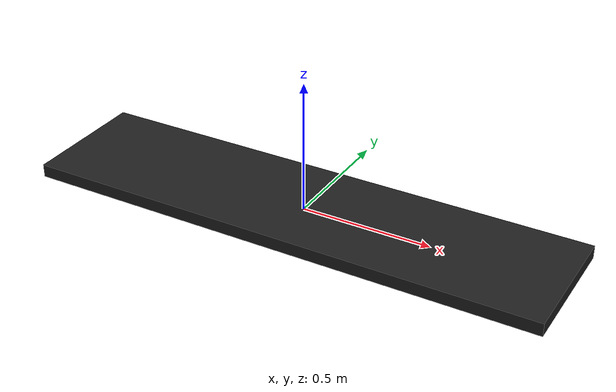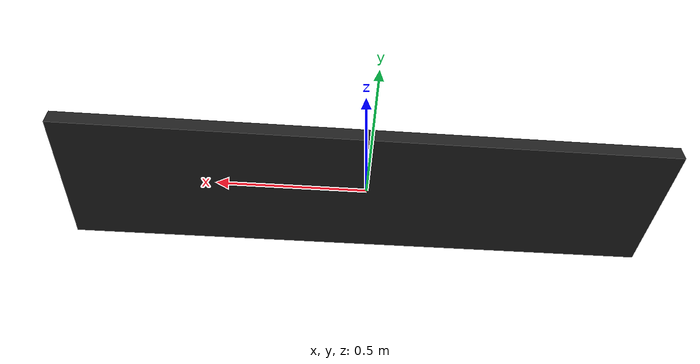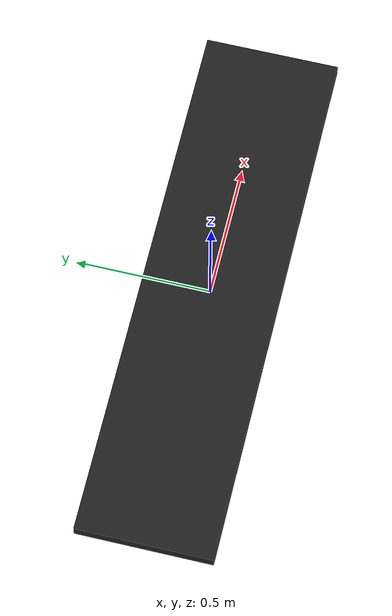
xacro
<?xml version="1.0"?>
<robot xmlns:xacro="http://ros.org/wiki/xacro" name="conveyor_belt">
  <xacro:macro name="conveyor_belt" params="prefix:='belt_'">
    <!-- Base Link -->
    <link name="${prefix}base_link">
      <inertial>
        <mass value="5"/>
        <inertia ixx="0.1" ixy="0" ixz="0" iyy="0.1" iyz="0" izz="0.1"/>
      </inertial>
    </link>

    <!-- Belt Surface -->
    <link name="${prefix}surface">
      <collision>
        <geometry>
          <box size="2.0 0.5 0.05"/>
        </geometry>
      </collision>
      <visual>
        <geometry>
          <box size="2.0 0.5 0.05"/>
        </geometry>
        <material name="Black"/>
      </visual>
      <inertial>
        <mass value="0.5"/>
        <inertia ixx="0.01" ixy="0" ixz="0" iyy="0.01" iyz="0" izz="0.01"/>
      </inertial>
    </link>

    <!-- Moving joint -->
    <joint name="${prefix}move_joint" type="prismatic">
      <parent link="${prefix}base_link"/>
      <child link="${prefix}surface"/>
      <axis xyz="1 0 0"/>
      <limit effort="100" velocity="1.0" lower="-1.0" upper="1.0"/>
    </joint>

    <gazebo reference="${prefix}surface">
      <mu1>0.1</mu1>
      <mu2>0.1</mu2>
      <material>Gazebo/Black</material>
      <surface>
        <friction>
          <ode>
            <slip>1.0</slip>
          </ode>
        </friction>
      </surface>
    </gazebo>

    <!-- ROS 2 Control -->
    <ros2_control name="${prefix}conveyor_control" type="system">
      <hardware>
        <plugin>gz_ros2_control/GzSystem</plugin>
      </hardware>
      <joint name="${prefix}move_joint">
        <command_interface name="velocity"/>
        <state_interface name="position"/>
        <state_interface name="velocity"/>
      </joint>
    </ros2_control>
  </xacro:macro>

  <xacro:conveyor_belt prefix="belt_"/>
</robot>
